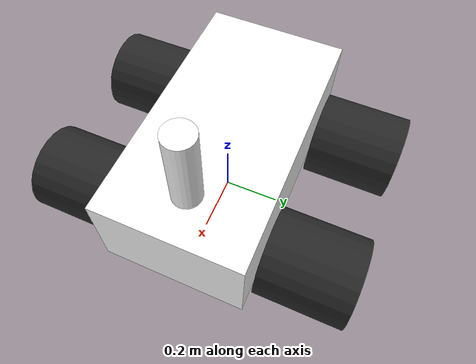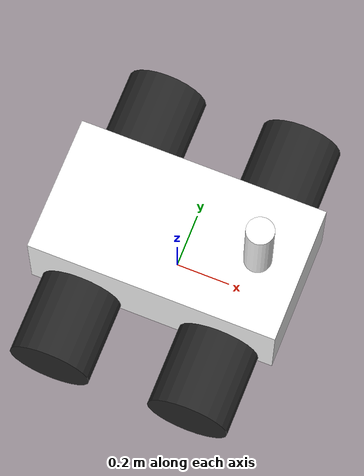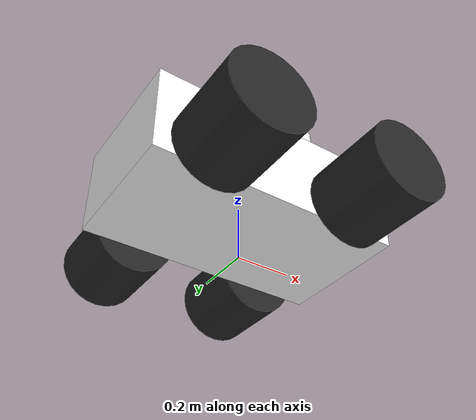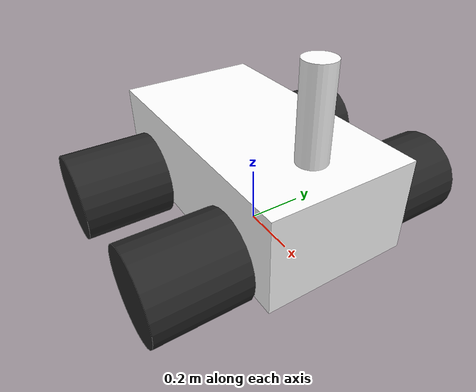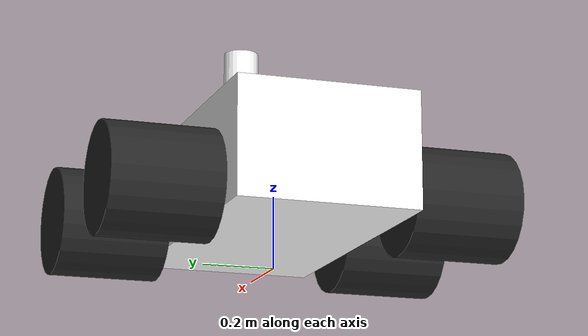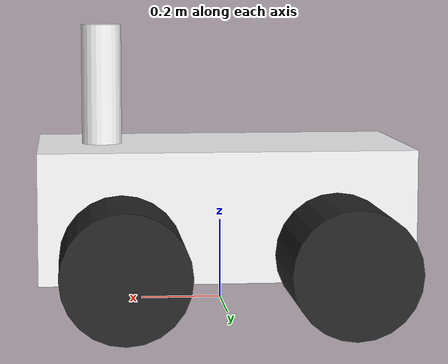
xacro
<?xml version="1.0"?>
<robot xmlns:xacro="http://www.ros.org/wiki/xacro">

    <material name="white">
        <color rgba="1 1 1 0.9" />
    </material>

    <material name="orange">
        <color rgba="1 0.3 0.1 1" />
    </material>

    <material name="blue">
        <color rgba="0.2 0.2 1 1" />
    </material>

    <material name="red">
        <color rgba="1 0 0 1" />
    </material>

    <material name="green">
        <color rgba="0 1 0 1" />
    </material>

    <material name="black">
        <color rgba="0.15 0.15 0.15 1" />
    </material>

    <link name="base_footprint">
    </link>
    <!-- BASE_FOOTPRINT LINK -->

    <joint name="base_footprint_joint" type="fixed">
        <parent link="base_footprint"/>
        <child link="base_link"/>
        <origin xyz="0 0 0" rpy="0 0 0"/>
    </joint>

    <link name="base_link">
    </link>

    <!-- CHASSIS LINK -->
    <joint name="chassis_joint" type="fixed">
        <parent link="base_link" />
        <child link="chassis_link" />
        <origin xyz="0 0 0.24" />
    </joint>
    <link name="chassis_link">
        <visual>
            <origin xyz="0 0 0" />
            <geometry>
                <box size="0.92 0.5 0.32" />
            </geometry>
            <material name="white" />
        </visual>
        <visual>
            <origin xyz="0.3 0 0.31" />
            <geometry>
                <cylinder radius="0.05" length="0.3" />
            </geometry>
            <material name="white" />
        </visual>
        <collision>
            <origin xyz="0 0 0" />
            <geometry>
                <box size="0.92 0.5 0.32" />
            </geometry>
            <material name="white" />
        </collision>
        <collision>
            <origin xyz="0.3 0 0.31" />
            <geometry>
                <cylinder radius="0.05" length="0.3" />
            </geometry>
            <material name="white" />
        </collision>
    </link>

    <!-- LEFT BACK WHEEL LINK -->
    <joint name="left_back_wheel_joint" type="fixed">
        <parent link="base_link" />
        <child link="left_back_wheel_link" />
        <origin xyz="-0.26 0.41 0.15" rpy="-${pi/2} 0 0" />
        <axis xyz="0 0 1" />
    </joint>
    <link name="left_back_wheel_link">
        <visual>
            <geometry>
                <cylinder radius="0.15" length="0.30" />
            </geometry>
            <material name="black" />
        </visual>
        <collision>
            <geometry>
                <cylinder radius="0.15" length="0.30" />
            </geometry>
            <material name="black" />
        </collision>
    </link>

    <!-- RIGHT BACK WHEEL LINK -->
    <joint name="right_back_wheel_joint" type="fixed">
        <parent link="base_link" />
        <child link="right_back_wheel_link" />
        <origin xyz="-0.26 -0.41 0.15" rpy="${pi/2} 0 0" />
        <axis xyz="0 0 -1" />
    </joint>
    <link name="right_back_wheel_link">
        <visual>
            <geometry>
                <cylinder radius="0.15" length="0.30" />
            </geometry>
            <material name="black" />
        </visual>
        <collision>
            <geometry>
                <cylinder radius="0.15" length="0.30" />
            </geometry>
            <material name="black" />
        </collision>
    </link>

    <!-- LEFT FRONT WHEEL LINK -->
    <joint name="left_front_wheel_joint" type="fixed">
        <parent link="base_link" />
        <child link="left_front_wheel_link" />
        <origin xyz="0.26 0.41 0.15" rpy="-${pi/2} 0 0" />
        <axis xyz="0 0 1" />
    </joint>
    <link name="left_front_wheel_link">
        <visual>
            <geometry>
                <cylinder radius="0.15" length="0.30" />
            </geometry>
            <material name="black" />
        </visual>
        <collision>
            <geometry>
                <cylinder radius="0.15" length="0.30" />
            </geometry>
            <material name="black" />
        </collision>
    </link>

    <!-- RIGHT FRONT WHEEL LINK -->
    <joint name="right_front_wheel_joint" type="fixed">
        <parent link="base_link" />
        <child link="right_front_wheel_link" />
        <origin xyz="0.26 -0.41 0.15" rpy="${pi/2} 0 0" />
        <axis xyz="0 0 -1" />
    </joint>
    <link name="right_front_wheel_link">
        <visual>
            <geometry>
                <cylinder radius="0.15" length="0.30" />
            </geometry>
            <material name="black" />
        </visual>
        <collision>
            <geometry>
                <cylinder radius="0.15" length="0.30" />
            </geometry>
            <material name="black" />
        </collision>
    </link>

</robot>
